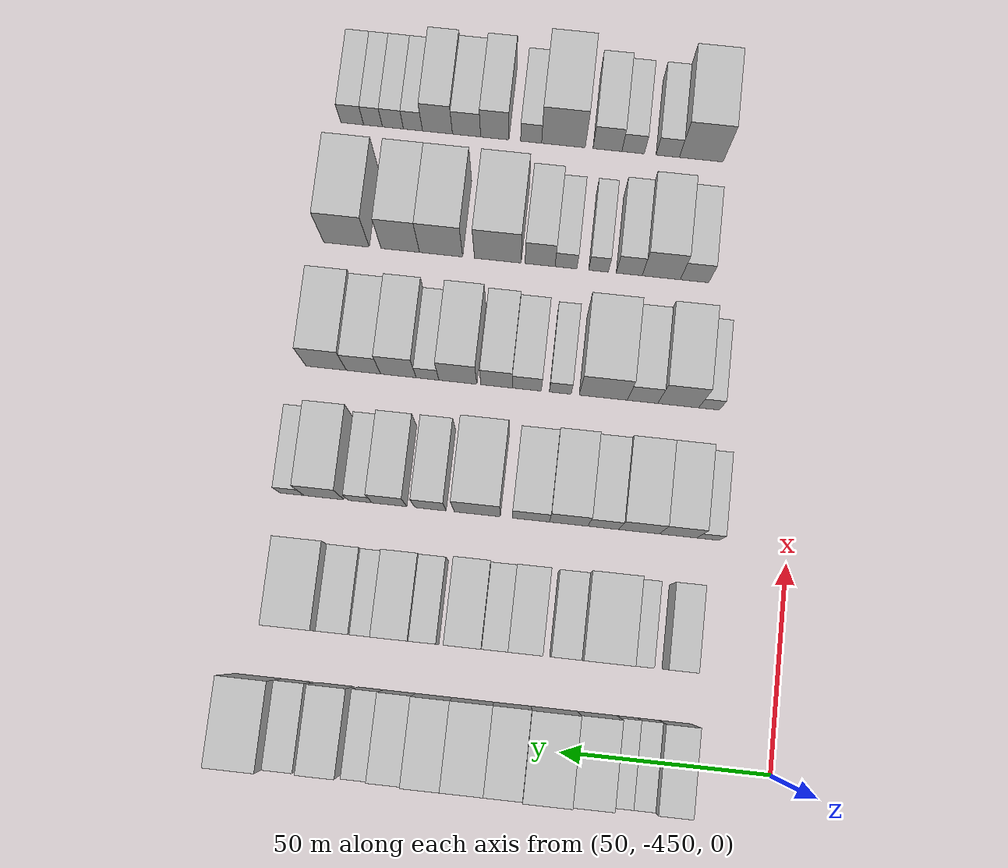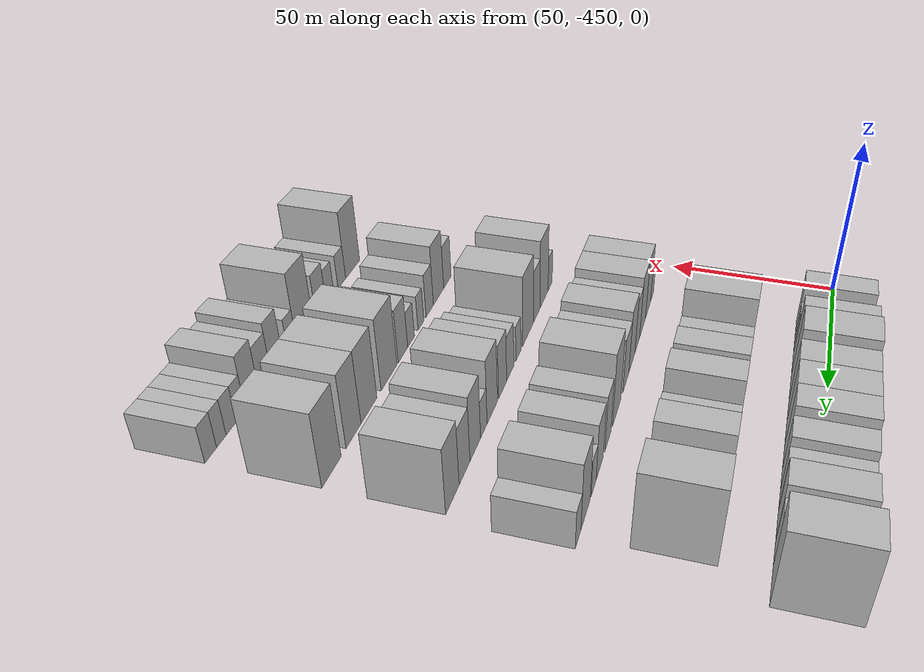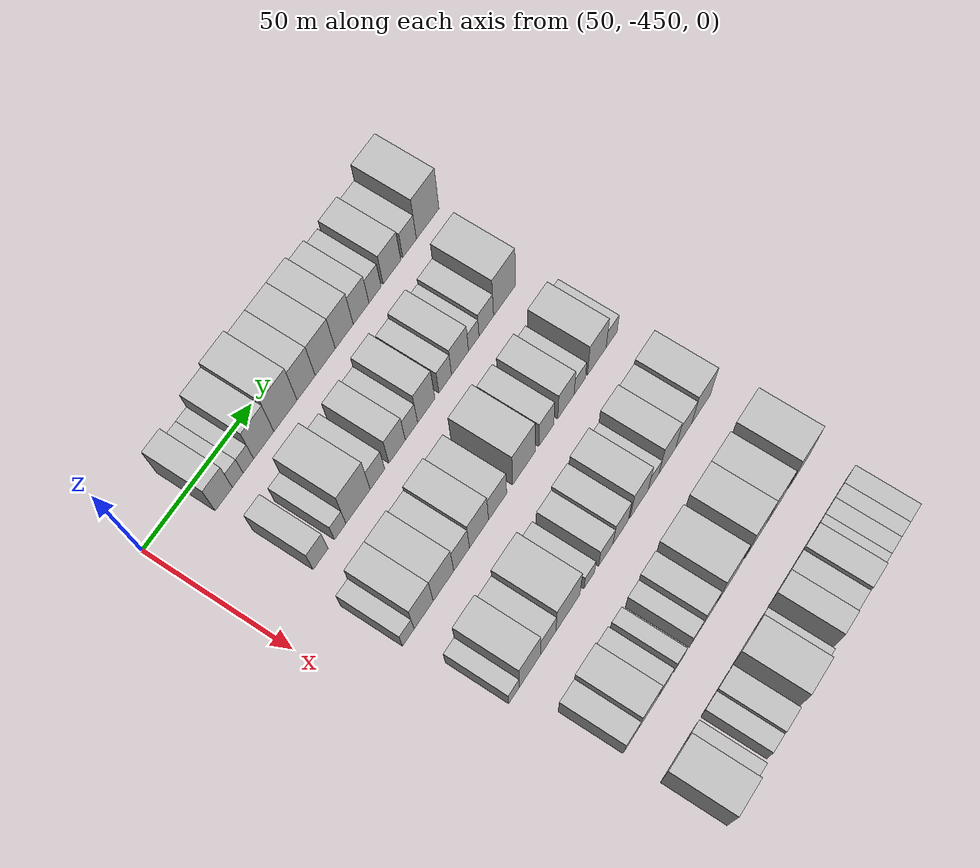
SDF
<sdf version="1.6">
 <world name="default">
  <model name="building_13">
   <static>1</static>
   <pose>50.0000 -426.4122 0 0.000000 0.000000 0.000000</pose>
   <link name="link">
    <pose>0 0 9.00 0 0 0</pose>
    <collision name="collision"><geometry><box><size>20.0000 7.9150 18.0000</size></box></geometry></collision>
    <visual name="visual">
     <cast_shadows>0</cast_shadows>
     <geometry><box><size>20.0000 7.9150 18.0000</size></box></geometry>
     <material>
      <script>
       <uri>model://HANNAS_wall/materials/scripts</uri>
       <uri>model://HANNAS_wall/materials/textures</uri>
       <name>vrc/HANNAS_wall</name>
      </script>
     </material>
    </visual>
   </link>
  </model>
  <model name="building_14">
   <static>1</static>
   <pose>50.0000 -419.9641 0 0.000000 0.000000 0.000000</pose>
   <link name="link">
    <pose>0 0 6.00 0 0 0</pose>
    <collision name="collision"><geometry><box><size>20.0000 4.9811 12.0000</size></box></geometry></collision>
    <visual name="visual">
     <cast_shadows>0</cast_shadows>
     <geometry><box><size>20.0000 4.9811 12.0000</size></box></geometry>
     <material>
      <script>
       <uri>model://HANNAS_wall/materials/scripts</uri>
       <uri>model://HANNAS_wall/materials/textures</uri>
       <name>vrc/HANNAS_wall</name>
      </script>
     </material>
    </visual>
   </link>
  </model>
  <model name="building_15">
   <static>1</static>
   <pose>50.0000 -415.0267 0 0.000000 0.000000 0.000000</pose>
   <link name="link">
    <pose>0 0 6.00 0 0 0</pose>
    <collision name="collision"><geometry><box><size>20.0000 4.8937 12.0000</size></box></geometry></collision>
    <visual name="visual">
     <cast_shadows>0</cast_shadows>
     <geometry><box><size>20.0000 4.8937 12.0000</size></box></geometry>
     <material>
      <script>
       <uri>model://HANNAS_wall/materials/scripts</uri>
       <uri>model://HANNAS_wall/materials/textures</uri>
       <name>vrc/HANNAS_wall</name>
      </script>
     </material>
    </visual>
   </link>
  </model>
  <model name="building_16">
   <static>1</static>
   <pose>50.0000 -407.8297 0 0.000000 0.000000 0.000000</pose>
   <link name="link">
    <pose>0 0 10.50 0 0 0</pose>
    <collision name="collision"><geometry><box><size>20.0000 9.5003 21.0000</size></box></geometry></collision>
    <visual name="visual">
     <cast_shadows>0</cast_shadows>
     <geometry><box><size>20.0000 9.5003 21.0000</size></box></geometry>
     <material>
      <script>
       <uri>model://HANNAS_wall/materials/scripts</uri>
       <uri>model://HANNAS_wall/materials/textures</uri>
       <name>vrc/HANNAS_wall</name>
      </script>
     </material>
    </visual>
   </link>
  </model>
  <model name="building_17">
   <static>1</static>
   <pose>50.0000 -397.5698 0 0.000000 0.000000 0.000000</pose>
   <link name="link">
    <pose>0 0 12.00 0 0 0</pose>
    <collision name="collision"><geometry><box><size>20.0000 11.0195 24.0000</size></box></geometry></collision>
    <visual name="visual">
     <cast_shadows>0</cast_shadows>
     <geometry><box><size>20.0000 11.0195 24.0000</size></box></geometry>
     <material>
      <script>
       <uri>model://HANNAS_wall/materials/scripts</uri>
       <uri>model://HANNAS_wall/materials/textures</uri>
       <name>vrc/HANNAS_wall</name>
      </script>
     </material>
    </visual>
   </link>
  </model>
  <model name="building_18">
   <static>1</static>
   <pose>50.0000 -387.6795 0 0.000000 0.000000 0.000000</pose>
   <link name="link">
    <pose>0 0 10.50 0 0 0</pose>
    <collision name="collision"><geometry><box><size>20.0000 8.7612 21.0000</size></box></geometry></collision>
    <visual name="visual">
     <cast_shadows>0</cast_shadows>
     <geometry><box><size>20.0000 8.7612 21.0000</size></box></geometry>
     <material>
      <script>
       <uri>model://HANNAS_wall/materials/scripts</uri>
       <uri>model://HANNAS_wall/materials/textures</uri>
       <name>vrc/HANNAS_wall</name>
      </script>
     </material>
    </visual>
   </link>
  </model>
  <model name="building_19">
   <static>1</static>
   <pose>50.0000 -378.4234 0 0.000000 0.000000 0.000000</pose>
   <link name="link">
    <pose>0 0 10.50 0 0 0</pose>
    <collision name="collision"><geometry><box><size>20.0000 9.7509 21.0000</size></box></geometry></collision>
    <visual name="visual">
     <cast_shadows>0</cast_shadows>
     <geometry><box><size>20.0000 9.7509 21.0000</size></box></geometry>
     <material>
      <script>
       <uri>model://HANNAS_wall/materials/scripts</uri>
       <uri>model://HANNAS_wall/materials/textures</uri>
       <name>vrc/HANNAS_wall</name>
      </script>
     </material>
    </visual>
   </link>
  </model>
  <model name="building_20">
   <static>1</static>
   <pose>50.0000 -369.1313 0 0.000000 0.000000 0.000000</pose>
   <link name="link">
    <pose>0 0 10.50 0 0 0</pose>
    <collision name="collision"><geometry><box><size>20.0000 8.8333 21.0000</size></box></geometry></collision>
    <visual name="visual">
     <cast_shadows>0</cast_shadows>
     <geometry><box><size>20.0000 8.8333 21.0000</size></box></geometry>
     <material>
      <script>
       <uri>model://HANNAS_wall/materials/scripts</uri>
       <uri>model://HANNAS_wall/materials/textures</uri>
       <name>vrc/HANNAS_wall</name>
      </script>
     </material>
    </visual>
   </link>
  </model>
  <model name="building_21">
   <static>1</static>
   <pose>50.0000 -360.8004 0 0.000000 0.000000 0.000000</pose>
   <link name="link">
    <pose>0 0 9.00 0 0 0</pose>
    <collision name="collision"><geometry><box><size>20.0000 7.8284 18.0000</size></box></geometry></collision>
    <visual name="visual">
     <cast_shadows>0</cast_shadows>
     <geometry><box><size>20.0000 7.8284 18.0000</size></box></geometry>
     <material>
      <script>
       <uri>model://HANNAS_wall/materials/scripts</uri>
       <uri>model://HANNAS_wall/materials/textures</uri>
       <name>vrc/HANNAS_wall</name>
      </script>
     </material>
    </visual>
   </link>
  </model>
  <model name="building_22">
   <static>1</static>
   <pose>50.0000 -353.8517 0 0.000000 0.000000 0.000000</pose>
   <link name="link">
    <pose>0 0 7.50 0 0 0</pose>
    <collision name="collision"><geometry><box><size>20.0000 6.0690 15.0000</size></box></geometry></collision>
    <visual name="visual">
     <cast_shadows>0</cast_shadows>
     <geometry><box><size>20.0000 6.0690 15.0000</size></box></geometry>
     <material>
      <script>
       <uri>model://HANNAS_wall/materials/scripts</uri>
       <uri>model://HANNAS_wall/materials/textures</uri>
       <name>vrc/HANNAS_wall</name>
      </script>
     </material>
    </visual>
   </link>
  </model>
  <model name="building_23">
   <static>1</static>
   <pose>50.0000 -345.3466 0 0.000000 0.000000 0.000000</pose>
   <link name="link">
    <pose>0 0 9.00 0 0 0</pose>
    <collision name="collision"><geometry><box><size>20.0000 8.9413 18.0000</size></box></geometry></collision>
    <visual name="visual">
     <cast_shadows>0</cast_shadows>
     <geometry><box><size>20.0000 8.9413 18.0000</size></box></geometry>
     <material>
      <script>
       <uri>model://HANNAS_wall/materials/scripts</uri>
       <uri>model://HANNAS_wall/materials/textures</uri>
       <name>vrc/HANNAS_wall</name>
      </script>
     </material>
    </visual>
   </link>
  </model>
  <model name="building_24">
   <static>1</static>
   <pose>50.0000 -336.3750 0 0.000000 0.000000 0.000000</pose>
   <link name="link">
    <pose>0 0 7.50 0 0 0</pose>
    <collision name="collision"><geometry><box><size>20.0000 7.0018 15.0000</size></box></geometry></collision>
    <visual name="visual">
     <cast_shadows>0</cast_shadows>
     <geometry><box><size>20.0000 7.0018 15.0000</size></box></geometry>
     <material>
      <script>
       <uri>model://HANNAS_wall/materials/scripts</uri>
       <uri>model://HANNAS_wall/materials/textures</uri>
       <name>vrc/HANNAS_wall</name>
      </script>
     </material>
    </visual>
   </link>
  </model>
  <model name="building_25">
   <static>1</static>
   <pose>50.0000 -327.0672 0 0.000000 0.000000 0.000000</pose>
   <link name="link">
    <pose>0 0 12.00 0 0 0</pose>
    <collision name="collision"><geometry><box><size>20.0000 11.6138 24.0000</size></box></geometry></collision>
    <visual name="visual">
     <cast_shadows>0</cast_shadows>
     <geometry><box><size>20.0000 11.6138 24.0000</size></box></geometry>
     <material>
      <script>
       <uri>model://HANNAS_wall/materials/scripts</uri>
       <uri>model://HANNAS_wall/materials/textures</uri>
       <name>vrc/HANNAS_wall</name>
      </script>
     </material>
    </visual>
   </link>
  </model>
  <model name="building_135">
   <static>1</static>
   <pose>82.0000 -425.7917 0 0.000000 0.000000 0.000000</pose>
   <link name="link">
    <pose>0 0 7.50 0 0 0</pose>
    <collision name="collision"><geometry><box><size>20.0000 6.9758 15.0000</size></box></geometry></collision>
    <visual name="visual">
     <cast_shadows>0</cast_shadows>
     <geometry><box><size>20.0000 6.9758 15.0000</size></box></geometry>
     <material>
      <script>
       <uri>model://HANNAS_wall/materials/scripts</uri>
       <uri>model://HANNAS_wall/materials/textures</uri>
       <name>vrc/HANNAS_wall</name>
      </script>
     </material>
    </visual>
   </link>
  </model>
  <model name="building_136">
   <static>1</static>
   <pose>82.0000 -416.6132 0 0.000000 0.000000 0.000000</pose>
   <link name="link">
    <pose>0 0 6.00 0 0 0</pose>
    <collision name="collision"><geometry><box><size>20.0000 5.3813 12.0000</size></box></geometry></collision>
    <visual name="visual">
     <cast_shadows>0</cast_shadows>
     <geometry><box><size>20.0000 5.3813 12.0000</size></box></geometry>
     <material>
      <script>
       <uri>model://HANNAS_wall/materials/scripts</uri>
       <uri>model://HANNAS_wall/materials/textures</uri>
       <name>vrc/HANNAS_wall</name>
      </script>
     </material>
    </visual>
   </link>
  </model>
  <model name="building_137">
   <static>1</static>
   <pose>82.0000 -408.1448 0 0.000000 0.000000 0.000000</pose>
   <link name="link">
    <pose>0 0 12.00 0 0 0</pose>
    <collision name="collision"><geometry><box><size>20.0000 11.5554 24.0000</size></box></geometry></collision>
    <visual name="visual">
     <cast_shadows>0</cast_shadows>
     <geometry><box><size>20.0000 11.5554 24.0000</size></box></geometry>
     <material>
      <script>
       <uri>model://HANNAS_wall/materials/scripts</uri>
       <uri>model://HANNAS_wall/materials/textures</uri>
       <name>vrc/HANNAS_wall</name>
      </script>
     </material>
    </visual>
   </link>
  </model>
  <model name="building_138">
   <static>1</static>
   <pose>82.0000 -398.8485 0 0.000000 0.000000 0.000000</pose>
   <link name="link">
    <pose>0 0 7.50 0 0 0</pose>
    <collision name="collision"><geometry><box><size>20.0000 7.0372 15.0000</size></box></geometry></collision>
    <visual name="visual">
     <cast_shadows>0</cast_shadows>
     <geometry><box><size>20.0000 7.0372 15.0000</size></box></geometry>
     <material>
      <script>
       <uri>model://HANNAS_wall/materials/scripts</uri>
       <uri>model://HANNAS_wall/materials/textures</uri>
       <name>vrc/HANNAS_wall</name>
      </script>
     </material>
    </visual>
   </link>
  </model>
  <model name="building_139">
   <static>1</static>
   <pose>82.0000 -389.3331 0 0.000000 0.000000 0.000000</pose>
   <link name="link">
    <pose>0 0 9.00 0 0 0</pose>
    <collision name="collision"><geometry><box><size>20.0000 7.9937 18.0000</size></box></geometry></collision>
    <visual name="visual">
     <cast_shadows>0</cast_shadows>
     <geometry><box><size>20.0000 7.9937 18.0000</size></box></geometry>
     <material>
      <script>
       <uri>model://HANNAS_wall/materials/scripts</uri>
       <uri>model://HANNAS_wall/materials/textures</uri>
       <name>vrc/HANNAS_wall</name>
      </script>
     </material>
    </visual>
   </link>
  </model>
  <model name="building_140">
   <static>1</static>
   <pose>82.0000 -382.2937 0 0.000000 0.000000 0.000000</pose>
   <link name="link">
    <pose>0 0 7.50 0 0 0</pose>
    <collision name="collision"><geometry><box><size>20.0000 6.0850 15.0000</size></box></geometry></collision>
    <visual name="visual">
     <cast_shadows>0</cast_shadows>
     <geometry><box><size>20.0000 6.0850 15.0000</size></box></geometry>
     <material>
      <script>
       <uri>model://HANNAS_wall/materials/scripts</uri>
       <uri>model://HANNAS_wall/materials/textures</uri>
       <name>vrc/HANNAS_wall</name>
      </script>
     </material>
    </visual>
   </link>
  </model>
  <model name="building_141">
   <static>1</static>
   <pose>82.0000 -374.9711 0 0.000000 0.000000 0.000000</pose>
   <link name="link">
    <pose>0 0 10.50 0 0 0</pose>
    <collision name="collision"><geometry><box><size>20.0000 8.5604 21.0000</size></box></geometry></collision>
    <visual name="visual">
     <cast_shadows>0</cast_shadows>
     <geometry><box><size>20.0000 8.5604 21.0000</size></box></geometry>
     <material>
      <script>
       <uri>model://HANNAS_wall/materials/scripts</uri>
       <uri>model://HANNAS_wall/materials/textures</uri>
       <name>vrc/HANNAS_wall</name>
      </script>
     </material>
    </visual>
   </link>
  </model>
  <model name="building_142">
   <static>1</static>
   <pose>82.0000 -365.5112 0 0.000000 0.000000 0.000000</pose>
   <link name="link">
    <pose>0 0 7.50 0 0 0</pose>
    <collision name="collision"><geometry><box><size>20.0000 6.3594 15.0000</size></box></geometry></collision>
    <visual name="visual">
     <cast_shadows>0</cast_shadows>
     <geometry><box><size>20.0000 6.3594 15.0000</size></box></geometry>
     <material>
      <script>
       <uri>model://HANNAS_wall/materials/scripts</uri>
       <uri>model://HANNAS_wall/materials/textures</uri>
       <name>vrc/HANNAS_wall</name>
      </script>
     </material>
    </visual>
   </link>
  </model>
  <model name="building_143">
   <static>1</static>
   <pose>82.0000 -358.0434 0 0.000000 0.000000 0.000000</pose>
   <link name="link">
    <pose>0 0 9.00 0 0 0</pose>
    <collision name="collision"><geometry><box><size>20.0000 8.5761 18.0000</size></box></geometry></collision>
    <visual name="visual">
     <cast_shadows>0</cast_shadows>
     <geometry><box><size>20.0000 8.5761 18.0000</size></box></geometry>
     <material>
      <script>
       <uri>model://HANNAS_wall/materials/scripts</uri>
       <uri>model://HANNAS_wall/materials/textures</uri>
       <name>vrc/HANNAS_wall</name>
      </script>
     </material>
    </visual>
   </link>
  </model>
  <model name="building_144">
   <static>1</static>
   <pose>82.0000 -351.0740 0 0.000000 0.000000 0.000000</pose>
   <link name="link">
    <pose>0 0 6.00 0 0 0</pose>
    <collision name="collision"><geometry><box><size>20.0000 5.3627 12.0000</size></box></geometry></collision>
    <visual name="visual">
     <cast_shadows>0</cast_shadows>
     <geometry><box><size>20.0000 5.3627 12.0000</size></box></geometry>
     <material>
      <script>
       <uri>model://HANNAS_wall/materials/scripts</uri>
       <uri>model://HANNAS_wall/materials/textures</uri>
       <name>vrc/HANNAS_wall</name>
      </script>
     </material>
    </visual>
   </link>
  </model>
  <model name="building_145">
   <static>1</static>
   <pose>82.0000 -344.6542 0 0.000000 0.000000 0.000000</pose>
   <link name="link">
    <pose>0 0 7.50 0 0 0</pose>
    <collision name="collision"><geometry><box><size>20.0000 7.4769 15.0000</size></box></geometry></collision>
    <visual name="visual">
     <cast_shadows>0</cast_shadows>
     <geometry><box><size>20.0000 7.4769 15.0000</size></box></geometry>
     <material>
      <script>
       <uri>model://HANNAS_wall/materials/scripts</uri>
       <uri>model://HANNAS_wall/materials/textures</uri>
       <name>vrc/HANNAS_wall</name>
      </script>
     </material>
    </visual>
   </link>
  </model>
  <model name="building_146">
   <static>1</static>
   <pose>82.0000 -335.2158 0 0.000000 0.000000 0.000000</pose>
   <link name="link">
    <pose>0 0 12.00 0 0 0</pose>
    <collision name="collision"><geometry><box><size>20.0000 11.3999 24.0000</size></box></geometry></collision>
    <visual name="visual">
     <cast_shadows>0</cast_shadows>
     <geometry><box><size>20.0000 11.3999 24.0000</size></box></geometry>
     <material>
      <script>
       <uri>model://HANNAS_wall/materials/scripts</uri>
       <uri>model://HANNAS_wall/materials/textures</uri>
       <name>vrc/HANNAS_wall</name>
      </script>
     </material>
    </visual>
   </link>
  </model>
  <model name="building_251">
   <static>1</static>
   <pose>114.0000 -430.6596 0 0.000000 0.000000 0.000000</pose>
   <link name="link">
    <pose>0 0 6.00 0 0 0</pose>
    <collision name="collision"><geometry><box><size>20.0000 5.4588 12.0000</size></box></geometry></collision>
    <visual name="visual">
     <cast_shadows>0</cast_shadows>
     <geometry><box><size>20.0000 5.4588 12.0000</size></box></geometry>
     <material>
      <script>
       <uri>model://HANNAS_wall/materials/scripts</uri>
       <uri>model://HANNAS_wall/materials/textures</uri>
       <name>vrc/HANNAS_wall</name>
      </script>
     </material>
    </visual>
   </link>
  </model>
  <model name="building_252">
   <static>1</static>
   <pose>114.0000 -423.3939 0 0.000000 0.000000 0.000000</pose>
   <link name="link">
    <pose>0 0 10.50 0 0 0</pose>
    <collision name="collision"><geometry><box><size>20.0000 9.0725 21.0000</size></box></geometry></collision>
    <visual name="visual">
     <cast_shadows>0</cast_shadows>
     <geometry><box><size>20.0000 9.0725 21.0000</size></box></geometry>
     <material>
      <script>
       <uri>model://HANNAS_wall/materials/scripts</uri>
       <uri>model://HANNAS_wall/materials/textures</uri>
       <name>vrc/HANNAS_wall</name>
      </script>
     </material>
    </visual>
   </link>
  </model>
  <model name="building_253">
   <static>1</static>
   <pose>114.0000 -413.9094 0 0.000000 0.000000 0.000000</pose>
   <link name="link">
    <pose>0 0 10.50 0 0 0</pose>
    <collision name="collision"><geometry><box><size>20.0000 9.8966 21.0000</size></box></geometry></collision>
    <visual name="visual">
     <cast_shadows>0</cast_shadows>
     <geometry><box><size>20.0000 9.8966 21.0000</size></box></geometry>
     <material>
      <script>
       <uri>model://HANNAS_wall/materials/scripts</uri>
       <uri>model://HANNAS_wall/materials/textures</uri>
       <name>vrc/HANNAS_wall</name>
      </script>
     </material>
    </visual>
   </link>
  </model>
  <model name="building_254">
   <static>1</static>
   <pose>114.0000 -405.1522 0 0.000000 0.000000 0.000000</pose>
   <link name="link">
    <pose>0 0 9.00 0 0 0</pose>
    <collision name="collision"><geometry><box><size>20.0000 7.6178 18.0000</size></box></geometry></collision>
    <visual name="visual">
     <cast_shadows>0</cast_shadows>
     <geometry><box><size>20.0000 7.6178 18.0000</size></box></geometry>
     <material>
      <script>
       <uri>model://HANNAS_wall/materials/scripts</uri>
       <uri>model://HANNAS_wall/materials/textures</uri>
       <name>vrc/HANNAS_wall</name>
      </script>
     </material>
    </visual>
   </link>
  </model>
  <model name="building_255">
   <static>1</static>
   <pose>114.0000 -396.6513 0 0.000000 0.000000 0.000000</pose>
   <link name="link">
    <pose>0 0 10.50 0 0 0</pose>
    <collision name="collision"><geometry><box><size>20.0000 9.3840 21.0000</size></box></geometry></collision>
    <visual name="visual">
     <cast_shadows>0</cast_shadows>
     <geometry><box><size>20.0000 9.3840 21.0000</size></box></geometry>
     <material>
      <script>
       <uri>model://HANNAS_wall/materials/scripts</uri>
       <uri>model://HANNAS_wall/materials/textures</uri>
       <name>vrc/HANNAS_wall</name>
      </script>
     </material>
    </visual>
   </link>
  </model>
  <model name="building_256">
   <static>1</static>
   <pose>114.0000 -387.4726 0 0.000000 0.000000 0.000000</pose>
   <link name="link">
    <pose>0 0 9.00 0 0 0</pose>
    <collision name="collision"><geometry><box><size>20.0000 8.9734 18.0000</size></box></geometry></collision>
    <visual name="visual">
     <cast_shadows>0</cast_shadows>
     <geometry><box><size>20.0000 8.9734 18.0000</size></box></geometry>
     <material>
      <script>
       <uri>model://HANNAS_wall/materials/scripts</uri>
       <uri>model://HANNAS_wall/materials/textures</uri>
       <name>vrc/HANNAS_wall</name>
      </script>
     </material>
    </visual>
   </link>
  </model>
  <model name="building_257">
   <static>1</static>
   <pose>114.0000 -374.3586 0 0.000000 0.000000 0.000000</pose>
   <link name="link">
    <pose>0 0 12.00 0 0 0</pose>
    <collision name="collision"><geometry><box><size>20.0000 11.2546 24.0000</size></box></geometry></collision>
    <visual name="visual">
     <cast_shadows>0</cast_shadows>
     <geometry><box><size>20.0000 11.2546 24.0000</size></box></geometry>
     <material>
      <script>
       <uri>model://HANNAS_wall/materials/scripts</uri>
       <uri>model://HANNAS_wall/materials/textures</uri>
       <name>vrc/HANNAS_wall</name>
      </script>
     </material>
    </visual>
   </link>
  </model>
  <model name="building_258">
   <static>1</static>
   <pose>114.0000 -362.9137 0 0.000000 0.000000 0.000000</pose>
   <link name="link">
    <pose>0 0 9.00 0 0 0</pose>
    <collision name="collision"><geometry><box><size>20.0000 7.6351 18.0000</size></box></geometry></collision>
    <visual name="visual">
     <cast_shadows>0</cast_shadows>
     <geometry><box><size>20.0000 7.6351 18.0000</size></box></geometry>
     <material>
      <script>
       <uri>model://HANNAS_wall/materials/scripts</uri>
       <uri>model://HANNAS_wall/materials/textures</uri>
       <name>vrc/HANNAS_wall</name>
      </script>
     </material>
    </visual>
   </link>
  </model>
  <model name="building_259">
   <static>1</static>
   <pose>114.0000 -352.8523 0 0.000000 0.000000 0.000000</pose>
   <link name="link">
    <pose>0 0 9.00 0 0 0</pose>
    <collision name="collision"><geometry><box><size>20.0000 8.4878 18.0000</size></box></geometry></collision>
    <visual name="visual">
     <cast_shadows>0</cast_shadows>
     <geometry><box><size>20.0000 8.4878 18.0000</size></box></geometry>
     <material>
      <script>
       <uri>model://HANNAS_wall/materials/scripts</uri>
       <uri>model://HANNAS_wall/materials/textures</uri>
       <name>vrc/HANNAS_wall</name>
      </script>
     </material>
    </visual>
   </link>
  </model>
  <model name="building_260">
   <static>1</static>
   <pose>114.0000 -345.6387 0 0.000000 0.000000 0.000000</pose>
   <link name="link">
    <pose>0 0 6.00 0 0 0</pose>
    <collision name="collision"><geometry><box><size>20.0000 5.9394 12.0000</size></box></geometry></collision>
    <visual name="visual">
     <cast_shadows>0</cast_shadows>
     <geometry><box><size>20.0000 5.9394 12.0000</size></box></geometry>
     <material>
      <script>
       <uri>model://HANNAS_wall/materials/scripts</uri>
       <uri>model://HANNAS_wall/materials/textures</uri>
       <name>vrc/HANNAS_wall</name>
      </script>
     </material>
    </visual>
   </link>
  </model>
  <model name="building_261">
   <static>1</static>
   <pose>114.0000 -336.7467 0 0.000000 0.000000 0.000000</pose>
   <link name="link">
    <pose>0 0 10.50 0 0 0</pose>
    <collision name="collision"><geometry><box><size>20.0000 9.8446 21.0000</size></box></geometry></collision>
    <visual name="visual">
     <cast_shadows>0</cast_shadows>
     <geometry><box><size>20.0000 9.8446 21.0000</size></box></geometry>
     <material>
      <script>
       <uri>model://HANNAS_wall/materials/scripts</uri>
       <uri>model://HANNAS_wall/materials/textures</uri>
       <name>vrc/HANNAS_wall</name>
      </script>
     </material>
    </visual>
   </link>
  </model>
  <model name="building_262">
   <static>1</static>
   <pose>114.0000 -328.8898 0 0.000000 0.000000 0.000000</pose>
   <link name="link">
    <pose>0 0 6.00 0 0 0</pose>
    <collision name="collision"><geometry><box><size>20.0000 5.8693 12.0000</size></box></geometry></collision>
    <visual name="visual">
     <cast_shadows>0</cast_shadows>
     <geometry><box><size>20.0000 5.8693 12.0000</size></box></geometry>
     <material>
      <script>
       <uri>model://HANNAS_wall/materials/scripts</uri>
       <uri>model://HANNAS_wall/materials/textures</uri>
       <name>vrc/HANNAS_wall</name>
      </script>
     </material>
    </visual>
   </link>
  </model>
  <model name="building_371">
   <static>1</static>
   <pose>146.0000 -428.2742 0 0.000000 0.000000 0.000000</pose>
   <link name="link">
    <pose>0 0 6.00 0 0 0</pose>
    <collision name="collision"><geometry><box><size>20.0000 5.1255 12.0000</size></box></geometry></collision>
    <visual name="visual">
     <cast_shadows>0</cast_shadows>
     <geometry><box><size>20.0000 5.1255 12.0000</size></box></geometry>
     <material>
      <script>
       <uri>model://HANNAS_wall/materials/scripts</uri>
       <uri>model://HANNAS_wall/materials/textures</uri>
       <name>vrc/HANNAS_wall</name>
      </script>
     </material>
    </visual>
   </link>
  </model>
  <model name="building_372">
   <static>1</static>
   <pose>146.0000 -420.6479 0 0.000000 0.000000 0.000000</pose>
   <link name="link">
    <pose>0 0 12.00 0 0 0</pose>
    <collision name="collision"><geometry><box><size>20.0000 10.1272 24.0000</size></box></geometry></collision>
    <visual name="visual">
     <cast_shadows>0</cast_shadows>
     <geometry><box><size>20.0000 10.1272 24.0000</size></box></geometry>
     <material>
      <script>
       <uri>model://HANNAS_wall/materials/scripts</uri>
       <uri>model://HANNAS_wall/materials/textures</uri>
       <name>vrc/HANNAS_wall</name>
      </script>
     </material>
    </visual>
   </link>
  </model>
  <model name="building_373">
   <static>1</static>
   <pose>146.0000 -411.8069 0 0.000000 0.000000 0.000000</pose>
   <link name="link">
    <pose>0 0 9.00 0 0 0</pose>
    <collision name="collision"><geometry><box><size>20.0000 7.5550 18.0000</size></box></geometry></collision>
    <visual name="visual">
     <cast_shadows>0</cast_shadows>
     <geometry><box><size>20.0000 7.5550 18.0000</size></box></geometry>
     <material>
      <script>
       <uri>model://HANNAS_wall/materials/scripts</uri>
       <uri>model://HANNAS_wall/materials/textures</uri>
       <name>vrc/HANNAS_wall</name>
      </script>
     </material>
    </visual>
   </link>
  </model>
  <model name="building_374">
   <static>1</static>
   <pose>146.0000 -402.0484 0 0.000000 0.000000 0.000000</pose>
   <link name="link">
    <pose>0 0 12.00 0 0 0</pose>
    <collision name="collision"><geometry><box><size>20.0000 11.9620 24.0000</size></box></geometry></collision>
    <visual name="visual">
     <cast_shadows>0</cast_shadows>
     <geometry><box><size>20.0000 11.9620 24.0000</size></box></geometry>
     <material>
      <script>
       <uri>model://HANNAS_wall/materials/scripts</uri>
       <uri>model://HANNAS_wall/materials/textures</uri>
       <name>vrc/HANNAS_wall</name>
      </script>
     </material>
    </visual>
   </link>
  </model>
  <model name="building_375">
   <static>1</static>
   <pose>146.0000 -391.3634 0 0.000000 0.000000 0.000000</pose>
   <link name="link">
    <pose>0 0 6.00 0 0 0</pose>
    <collision name="collision"><geometry><box><size>20.0000 5.4080 12.0000</size></box></geometry></collision>
    <visual name="visual">
     <cast_shadows>0</cast_shadows>
     <geometry><box><size>20.0000 5.4080 12.0000</size></box></geometry>
     <material>
      <script>
       <uri>model://HANNAS_wall/materials/scripts</uri>
       <uri>model://HANNAS_wall/materials/textures</uri>
       <name>vrc/HANNAS_wall</name>
      </script>
     </material>
    </visual>
   </link>
  </model>
  <model name="building_376">
   <static>1</static>
   <pose>146.0000 -383.0365 0 0.000000 0.000000 0.000000</pose>
   <link name="link">
    <pose>0 0 7.50 0 0 0</pose>
    <collision name="collision"><geometry><box><size>20.0000 7.2460 15.0000</size></box></geometry></collision>
    <visual name="visual">
     <cast_shadows>0</cast_shadows>
     <geometry><box><size>20.0000 7.2460 15.0000</size></box></geometry>
     <material>
      <script>
       <uri>model://HANNAS_wall/materials/scripts</uri>
       <uri>model://HANNAS_wall/materials/textures</uri>
       <name>vrc/HANNAS_wall</name>
      </script>
     </material>
    </visual>
   </link>
  </model>
  <model name="building_377">
   <static>1</static>
   <pose>146.0000 -375.5281 0 0.000000 0.000000 0.000000</pose>
   <link name="link">
    <pose>0 0 9.00 0 0 0</pose>
    <collision name="collision"><geometry><box><size>20.0000 7.7708 18.0000</size></box></geometry></collision>
    <visual name="visual">
     <cast_shadows>0</cast_shadows>
     <geometry><box><size>20.0000 7.7708 18.0000</size></box></geometry>
     <material>
      <script>
       <uri>model://HANNAS_wall/materials/scripts</uri>
       <uri>model://HANNAS_wall/materials/textures</uri>
       <name>vrc/HANNAS_wall</name>
      </script>
     </material>
    </visual>
   </link>
  </model>
  <model name="building_378">
   <static>1</static>
   <pose>146.0000 -365.9188 0 0.000000 0.000000 0.000000</pose>
   <link name="link">
    <pose>0 0 10.50 0 0 0</pose>
    <collision name="collision"><geometry><box><size>20.0000 9.4479 21.0000</size></box></geometry></collision>
    <visual name="visual">
     <cast_shadows>0</cast_shadows>
     <geometry><box><size>20.0000 9.4479 21.0000</size></box></geometry>
     <material>
      <script>
       <uri>model://HANNAS_wall/materials/scripts</uri>
       <uri>model://HANNAS_wall/materials/textures</uri>
       <name>vrc/HANNAS_wall</name>
      </script>
     </material>
    </visual>
   </link>
  </model>
  <model name="building_379">
   <static>1</static>
   <pose>146.0000 -358.3593 0 0.000000 0.000000 0.000000</pose>
   <link name="link">
    <pose>0 0 6.00 0 0 0</pose>
    <collision name="collision"><geometry><box><size>20.0000 5.6710 12.0000</size></box></geometry></collision>
    <visual name="visual">
     <cast_shadows>0</cast_shadows>
     <geometry><box><size>20.0000 5.6710 12.0000</size></box></geometry>
     <material>
      <script>
       <uri>model://HANNAS_wall/materials/scripts</uri>
       <uri>model://HANNAS_wall/materials/textures</uri>
       <name>vrc/HANNAS_wall</name>
      </script>
     </material>
    </visual>
   </link>
  </model>
  <model name="building_380">
   <static>1</static>
   <pose>146.0000 -351.0959 0 0.000000 0.000000 0.000000</pose>
   <link name="link">
    <pose>0 0 10.50 0 0 0</pose>
    <collision name="collision"><geometry><box><size>20.0000 8.8557 21.0000</size></box></geometry></collision>
    <visual name="visual">
     <cast_shadows>0</cast_shadows>
     <geometry><box><size>20.0000 8.8557 21.0000</size></box></geometry>
     <material>
      <script>
       <uri>model://HANNAS_wall/materials/scripts</uri>
       <uri>model://HANNAS_wall/materials/textures</uri>
       <name>vrc/HANNAS_wall</name>
      </script>
     </material>
    </visual>
   </link>
  </model>
  <model name="building_381">
   <static>1</static>
   <pose>146.0000 -342.4006 0 0.000000 0.000000 0.000000</pose>
   <link name="link">
    <pose>0 0 9.00 0 0 0</pose>
    <collision name="collision"><geometry><box><size>20.0000 8.5349 18.0000</size></box></geometry></collision>
    <visual name="visual">
     <cast_shadows>0</cast_shadows>
     <geometry><box><size>20.0000 8.5349 18.0000</size></box></geometry>
     <material>
      <script>
       <uri>model://HANNAS_wall/materials/scripts</uri>
       <uri>model://HANNAS_wall/materials/textures</uri>
       <name>vrc/HANNAS_wall</name>
      </script>
     </material>
    </visual>
   </link>
  </model>
  <model name="building_382">
   <static>1</static>
   <pose>146.0000 -333.0922 0 0.000000 0.000000 0.000000</pose>
   <link name="link">
    <pose>0 0 10.50 0 0 0</pose>
    <collision name="collision"><geometry><box><size>20.0000 10.0819 21.0000</size></box></geometry></collision>
    <visual name="visual">
     <cast_shadows>0</cast_shadows>
     <geometry><box><size>20.0000 10.0819 21.0000</size></box></geometry>
     <material>
      <script>
       <uri>model://HANNAS_wall/materials/scripts</uri>
       <uri>model://HANNAS_wall/materials/textures</uri>
       <name>vrc/HANNAS_wall</name>
      </script>
     </material>
    </visual>
   </link>
  </model>
  <model name="building_489">
   <static>1</static>
   <pose>178.0000 -421.9412 0 0.000000 0.000000 0.000000</pose>
   <link name="link">
    <pose>0 0 7.50 0 0 0</pose>
    <collision name="collision"><geometry><box><size>20.0000 7.1451 15.0000</size></box></geometry></collision>
    <visual name="visual">
     <cast_shadows>0</cast_shadows>
     <geometry><box><size>20.0000 7.1451 15.0000</size></box></geometry>
     <material>
      <script>
       <uri>model://HANNAS_wall/materials/scripts</uri>
       <uri>model://HANNAS_wall/materials/textures</uri>
       <name>vrc/HANNAS_wall</name>
      </script>
     </material>
    </visual>
   </link>
  </model>
  <model name="building_490">
   <static>1</static>
   <pose>178.0000 -413.5639 0 0.000000 0.000000 0.000000</pose>
   <link name="link">
    <pose>0 0 10.50 0 0 0</pose>
    <collision name="collision"><geometry><box><size>20.0000 9.6095 21.0000</size></box></geometry></collision>
    <visual name="visual">
     <cast_shadows>0</cast_shadows>
     <geometry><box><size>20.0000 9.6095 21.0000</size></box></geometry>
     <material>
      <script>
       <uri>model://HANNAS_wall/materials/scripts</uri>
       <uri>model://HANNAS_wall/materials/textures</uri>
       <name>vrc/HANNAS_wall</name>
      </script>
     </material>
    </visual>
   </link>
  </model>
  <model name="building_491">
   <static>1</static>
   <pose>178.0000 -405.4945 0 0.000000 0.000000 0.000000</pose>
   <link name="link">
    <pose>0 0 7.50 0 0 0</pose>
    <collision name="collision"><geometry><box><size>20.0000 6.5293 15.0000</size></box></geometry></collision>
    <visual name="visual">
     <cast_shadows>0</cast_shadows>
     <geometry><box><size>20.0000 6.5293 15.0000</size></box></geometry>
     <material>
      <script>
       <uri>model://HANNAS_wall/materials/scripts</uri>
       <uri>model://HANNAS_wall/materials/textures</uri>
       <name>vrc/HANNAS_wall</name>
      </script>
     </material>
    </visual>
   </link>
  </model>
  <model name="building_492">
   <static>1</static>
   <pose>178.0000 -397.7536 0 0.000000 0.000000 0.000000</pose>
   <link name="link">
    <pose>0 0 6.00 0 0 0</pose>
    <collision name="collision"><geometry><box><size>20.0000 4.9525 12.0000</size></box></geometry></collision>
    <visual name="visual">
     <cast_shadows>0</cast_shadows>
     <geometry><box><size>20.0000 4.9525 12.0000</size></box></geometry>
     <material>
      <script>
       <uri>model://HANNAS_wall/materials/scripts</uri>
       <uri>model://HANNAS_wall/materials/textures</uri>
       <name>vrc/HANNAS_wall</name>
      </script>
     </material>
    </visual>
   </link>
  </model>
  <model name="building_493">
   <static>1</static>
   <pose>178.0000 -389.5254 0 0.000000 0.000000 0.000000</pose>
   <link name="link">
    <pose>0 0 6.00 0 0 0</pose>
    <collision name="collision"><geometry><box><size>20.0000 5.5040 12.0000</size></box></geometry></collision>
    <visual name="visual">
     <cast_shadows>0</cast_shadows>
     <geometry><box><size>20.0000 5.5040 12.0000</size></box></geometry>
     <material>
      <script>
       <uri>model://HANNAS_wall/materials/scripts</uri>
       <uri>model://HANNAS_wall/materials/textures</uri>
       <name>vrc/HANNAS_wall</name>
      </script>
     </material>
    </visual>
   </link>
  </model>
  <model name="building_494">
   <static>1</static>
   <pose>178.0000 -382.9999 0 0.000000 0.000000 0.000000</pose>
   <link name="link">
    <pose>0 0 9.00 0 0 0</pose>
    <collision name="collision"><geometry><box><size>20.0000 7.5469 18.0000</size></box></geometry></collision>
    <visual name="visual">
     <cast_shadows>0</cast_shadows>
     <geometry><box><size>20.0000 7.5469 18.0000</size></box></geometry>
     <material>
      <script>
       <uri>model://HANNAS_wall/materials/scripts</uri>
       <uri>model://HANNAS_wall/materials/textures</uri>
       <name>vrc/HANNAS_wall</name>
      </script>
     </material>
    </visual>
   </link>
  </model>
  <model name="building_495">
   <static>1</static>
   <pose>178.0000 -372.3361 0 0.000000 0.000000 0.000000</pose>
   <link name="link">
    <pose>0 0 12.00 0 0 0</pose>
    <collision name="collision"><geometry><box><size>20.0000 11.7808 24.0000</size></box></geometry></collision>
    <visual name="visual">
     <cast_shadows>0</cast_shadows>
     <geometry><box><size>20.0000 11.7808 24.0000</size></box></geometry>
     <material>
      <script>
       <uri>model://HANNAS_wall/materials/scripts</uri>
       <uri>model://HANNAS_wall/materials/textures</uri>
       <name>vrc/HANNAS_wall</name>
      </script>
     </material>
    </visual>
   </link>
  </model>
  <model name="building_496">
   <static>1</static>
   <pose>178.0000 -357.9860 0 0.000000 0.000000 0.000000</pose>
   <link name="link">
    <pose>0 0 12.00 0 0 0</pose>
    <collision name="collision"><geometry><box><size>20.0000 10.9194 24.0000</size></box></geometry></collision>
    <visual name="visual">
     <cast_shadows>0</cast_shadows>
     <geometry><box><size>20.0000 10.9194 24.0000</size></box></geometry>
     <material>
      <script>
       <uri>model://HANNAS_wall/materials/scripts</uri>
       <uri>model://HANNAS_wall/materials/textures</uri>
       <name>vrc/HANNAS_wall</name>
      </script>
     </material>
    </visual>
   </link>
  </model>
  <model name="building_497">
   <static>1</static>
   <pose>178.0000 -347.6556 0 0.000000 0.000000 0.000000</pose>
   <link name="link">
    <pose>0 0 12.00 0 0 0</pose>
    <collision name="collision"><geometry><box><size>20.0000 9.7413 24.0000</size></box></geometry></collision>
    <visual name="visual">
     <cast_shadows>0</cast_shadows>
     <geometry><box><size>20.0000 9.7413 24.0000</size></box></geometry>
     <material>
      <script>
       <uri>model://HANNAS_wall/materials/scripts</uri>
       <uri>model://HANNAS_wall/materials/textures</uri>
       <name>vrc/HANNAS_wall</name>
      </script>
     </material>
    </visual>
   </link>
  </model>
  <model name="building_498">
   <static>1</static>
   <pose>178.0000 -334.0183 0 0.000000 0.000000 0.000000</pose>
   <link name="link">
    <pose>0 0 12.00 0 0 0</pose>
    <collision name="collision"><geometry><box><size>20.0000 11.5334 24.0000</size></box></geometry></collision>
    <visual name="visual">
     <cast_shadows>0</cast_shadows>
     <geometry><box><size>20.0000 11.5334 24.0000</size></box></geometry>
     <material>
      <script>
       <uri>model://HANNAS_wall/materials/scripts</uri>
       <uri>model://HANNAS_wall/materials/textures</uri>
       <name>vrc/HANNAS_wall</name>
      </script>
     </material>
    </visual>
   </link>
  </model>
  <model name="building_602">
   <static>1</static>
   <pose>210.0000 -420.9238 0 0.000000 0.000000 0.000000</pose>
   <link name="link">
    <pose>0 0 12.00 0 0 0</pose>
    <collision name="collision"><geometry><box><size>20.0000 11.1882 24.0000</size></box></geometry></collision>
    <visual name="visual">
     <cast_shadows>0</cast_shadows>
     <geometry><box><size>20.0000 11.1882 24.0000</size></box></geometry>
     <material>
      <script>
       <uri>model://HANNAS_wall/materials/scripts</uri>
       <uri>model://HANNAS_wall/materials/textures</uri>
       <name>vrc/HANNAS_wall</name>
      </script>
     </material>
    </visual>
   </link>
  </model>
  <model name="building_603">
   <static>1</static>
   <pose>210.0000 -412.3554 0 0.000000 0.000000 0.000000</pose>
   <link name="link">
    <pose>0 0 6.00 0 0 0</pose>
    <collision name="collision"><geometry><box><size>20.0000 5.9486 12.0000</size></box></geometry></collision>
    <visual name="visual">
     <cast_shadows>0</cast_shadows>
     <geometry><box><size>20.0000 5.9486 12.0000</size></box></geometry>
     <material>
      <script>
       <uri>model://HANNAS_wall/materials/scripts</uri>
       <uri>model://HANNAS_wall/materials/textures</uri>
       <name>vrc/HANNAS_wall</name>
      </script>
     </material>
    </visual>
   </link>
  </model>
  <model name="building_604">
   <static>1</static>
   <pose>210.0000 -403.5093 0 0.000000 0.000000 0.000000</pose>
   <link name="link">
    <pose>0 0 6.00 0 0 0</pose>
    <collision name="collision"><geometry><box><size>20.0000 5.7437 12.0000</size></box></geometry></collision>
    <visual name="visual">
     <cast_shadows>0</cast_shadows>
     <geometry><box><size>20.0000 5.7437 12.0000</size></box></geometry>
     <material>
      <script>
       <uri>model://HANNAS_wall/materials/scripts</uri>
       <uri>model://HANNAS_wall/materials/textures</uri>
       <name>vrc/HANNAS_wall</name>
      </script>
     </material>
    </visual>
   </link>
  </model>
  <model name="building_605">
   <static>1</static>
   <pose>210.0000 -396.9394 0 0.000000 0.000000 0.000000</pose>
   <link name="link">
    <pose>0 0 7.50 0 0 0</pose>
    <collision name="collision"><geometry><box><size>20.0000 7.3960 15.0000</size></box></geometry></collision>
    <visual name="visual">
     <cast_shadows>0</cast_shadows>
     <geometry><box><size>20.0000 7.3960 15.0000</size></box></geometry>
     <material>
      <script>
       <uri>model://HANNAS_wall/materials/scripts</uri>
       <uri>model://HANNAS_wall/materials/textures</uri>
       <name>vrc/HANNAS_wall</name>
      </script>
     </material>
    </visual>
   </link>
  </model>
  <model name="building_606">
   <static>1</static>
   <pose>210.0000 -385.6520 0 0.000000 0.000000 0.000000</pose>
   <link name="link">
    <pose>0 0 12.00 0 0 0</pose>
    <collision name="collision"><geometry><box><size>20.0000 11.1789 24.0000</size></box></geometry></collision>
    <visual name="visual">
     <cast_shadows>0</cast_shadows>
     <geometry><box><size>20.0000 11.1789 24.0000</size></box></geometry>
     <material>
      <script>
       <uri>model://HANNAS_wall/materials/scripts</uri>
       <uri>model://HANNAS_wall/materials/textures</uri>
       <name>vrc/HANNAS_wall</name>
      </script>
     </material>
    </visual>
   </link>
  </model>
  <model name="building_607">
   <static>1</static>
   <pose>210.0000 -377.3682 0 0.000000 0.000000 0.000000</pose>
   <link name="link">
    <pose>0 0 6.00 0 0 0</pose>
    <collision name="collision"><geometry><box><size>20.0000 5.3885 12.0000</size></box></geometry></collision>
    <visual name="visual">
     <cast_shadows>0</cast_shadows>
     <geometry><box><size>20.0000 5.3885 12.0000</size></box></geometry>
     <material>
      <script>
       <uri>model://HANNAS_wall/materials/scripts</uri>
       <uri>model://HANNAS_wall/materials/textures</uri>
       <name>vrc/HANNAS_wall</name>
      </script>
     </material>
    </visual>
   </link>
  </model>
  <model name="building_608">
   <static>1</static>
   <pose>210.0000 -368.0435 0 0.000000 0.000000 0.000000</pose>
   <link name="link">
    <pose>0 0 9.00 0 0 0</pose>
    <collision name="collision"><geometry><box><size>20.0000 7.2609 18.0000</size></box></geometry></collision>
    <visual name="visual">
     <cast_shadows>0</cast_shadows>
     <geometry><box><size>20.0000 7.2609 18.0000</size></box></geometry>
     <material>
      <script>
       <uri>model://HANNAS_wall/materials/scripts</uri>
       <uri>model://HANNAS_wall/materials/textures</uri>
       <name>vrc/HANNAS_wall</name>
      </script>
     </material>
    </visual>
   </link>
  </model>
  <model name="building_609">
   <static>1</static>
   <pose>210.0000 -360.7894 0 0.000000 0.000000 0.000000</pose>
   <link name="link">
    <pose>0 0 7.50 0 0 0</pose>
    <collision name="collision"><geometry><box><size>20.0000 7.2472 15.0000</size></box></geometry></collision>
    <visual name="visual">
     <cast_shadows>0</cast_shadows>
     <geometry><box><size>20.0000 7.2472 15.0000</size></box></geometry>
     <material>
      <script>
       <uri>model://HANNAS_wall/materials/scripts</uri>
       <uri>model://HANNAS_wall/materials/textures</uri>
       <name>vrc/HANNAS_wall</name>
      </script>
     </material>
    </visual>
   </link>
  </model>
  <model name="building_610">
   <static>1</static>
   <pose>210.0000 -353.3053 0 0.000000 0.000000 0.000000</pose>
   <link name="link">
    <pose>0 0 9.00 0 0 0</pose>
    <collision name="collision"><geometry><box><size>20.0000 7.7210 18.0000</size></box></geometry></collision>
    <visual name="visual">
     <cast_shadows>0</cast_shadows>
     <geometry><box><size>20.0000 7.7210 18.0000</size></box></geometry>
     <material>
      <script>
       <uri>model://HANNAS_wall/materials/scripts</uri>
       <uri>model://HANNAS_wall/materials/textures</uri>
       <name>vrc/HANNAS_wall</name>
      </script>
     </material>
    </visual>
   </link>
  </model>
  <model name="building_611">
   <static>1</static>
   <pose>210.0000 -347.0002 0 0.000000 0.000000 0.000000</pose>
   <link name="link">
    <pose>0 0 6.00 0 0 0</pose>
    <collision name="collision"><geometry><box><size>20.0000 4.8892 12.0000</size></box></geometry></collision>
    <visual name="visual">
     <cast_shadows>0</cast_shadows>
     <geometry><box><size>20.0000 4.8892 12.0000</size></box></geometry>
     <material>
      <script>
       <uri>model://HANNAS_wall/materials/scripts</uri>
       <uri>model://HANNAS_wall/materials/textures</uri>
       <name>vrc/HANNAS_wall</name>
      </script>
     </material>
    </visual>
   </link>
  </model>
  <model name="building_612">
   <static>1</static>
   <pose>210.0000 -341.8537 0 0.000000 0.000000 0.000000</pose>
   <link name="link">
    <pose>0 0 6.00 0 0 0</pose>
    <collision name="collision"><geometry><box><size>20.0000 5.4040 12.0000</size></box></geometry></collision>
    <visual name="visual">
     <cast_shadows>0</cast_shadows>
     <geometry><box><size>20.0000 5.4040 12.0000</size></box></geometry>
     <material>
      <script>
       <uri>model://HANNAS_wall/materials/scripts</uri>
       <uri>model://HANNAS_wall/materials/textures</uri>
       <name>vrc/HANNAS_wall</name>
      </script>
     </material>
    </visual>
   </link>
  </model>
  <model name="building_613">
   <static>1</static>
   <pose>210.0000 -336.7320 0 0.000000 0.000000 0.000000</pose>
   <link name="link">
    <pose>0 0 6.00 0 0 0</pose>
    <collision name="collision"><geometry><box><size>20.0000 4.8393 12.0000</size></box></geometry></collision>
    <visual name="visual">
     <cast_shadows>0</cast_shadows>
     <geometry><box><size>20.0000 4.8393 12.0000</size></box></geometry>
     <material>
      <script>
       <uri>model://HANNAS_wall/materials/scripts</uri>
       <uri>model://HANNAS_wall/materials/textures</uri>
       <name>vrc/HANNAS_wall</name>
      </script>
     </material>
    </visual>
   </link>
  </model>
  <model name="building_614">
   <static>1</static>
   <pose>210.0000 -331.3699 0 0.000000 0.000000 0.000000</pose>
   <link name="link">
    <pose>0 0 6.00 0 0 0</pose>
    <collision name="collision"><geometry><box><size>20.0000 5.8849 12.0000</size></box></geometry></collision>
    <visual name="visual">
     <cast_shadows>0</cast_shadows>
     <geometry><box><size>20.0000 5.8849 12.0000</size></box></geometry>
     <material>
      <script>
       <uri>model://HANNAS_wall/materials/scripts</uri>
       <uri>model://HANNAS_wall/materials/textures</uri>
       <name>vrc/HANNAS_wall</name>
      </script>
     </material>
    </visual>
   </link>
  </model>
 </world>
</sdf>
